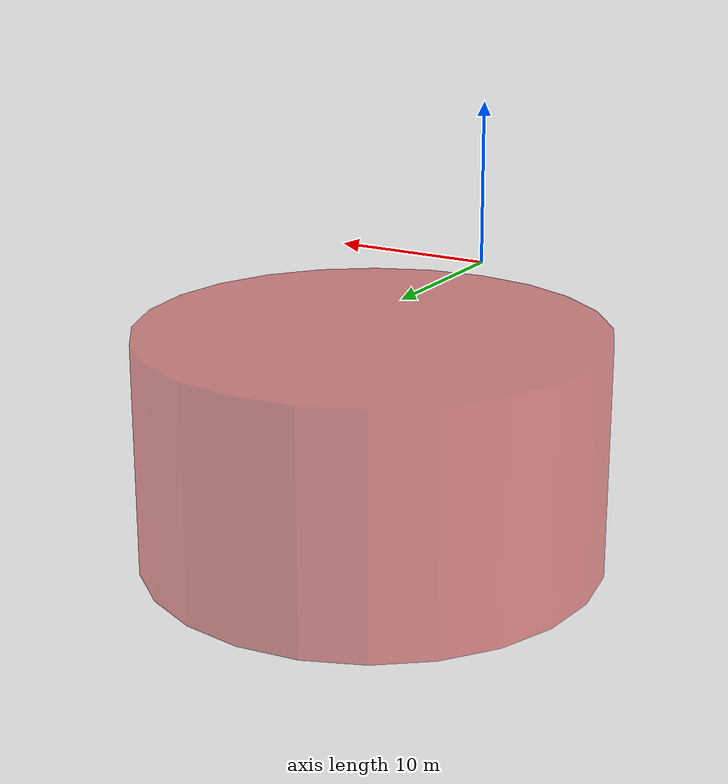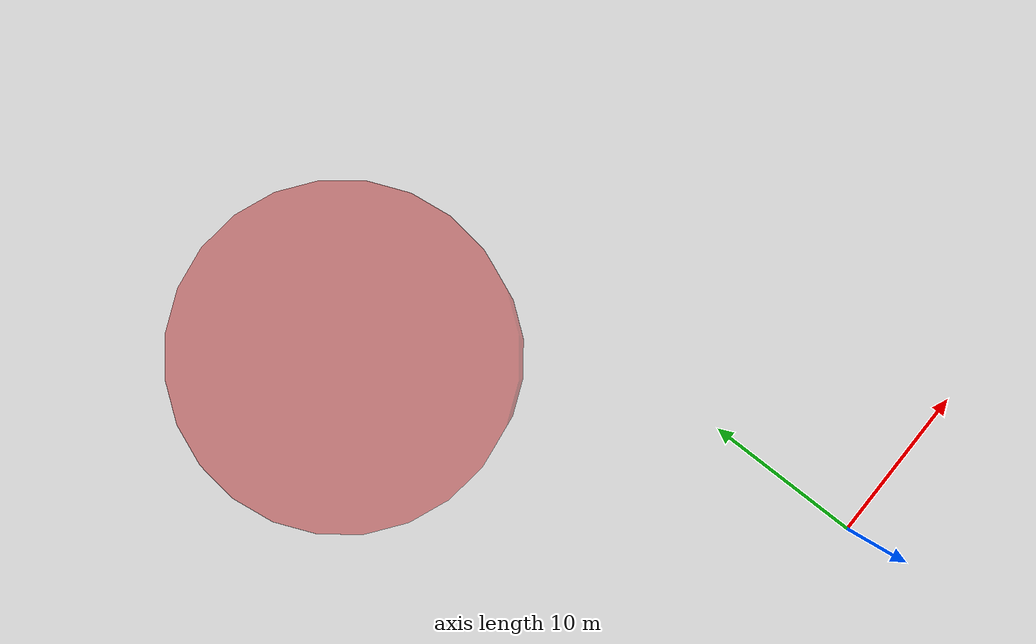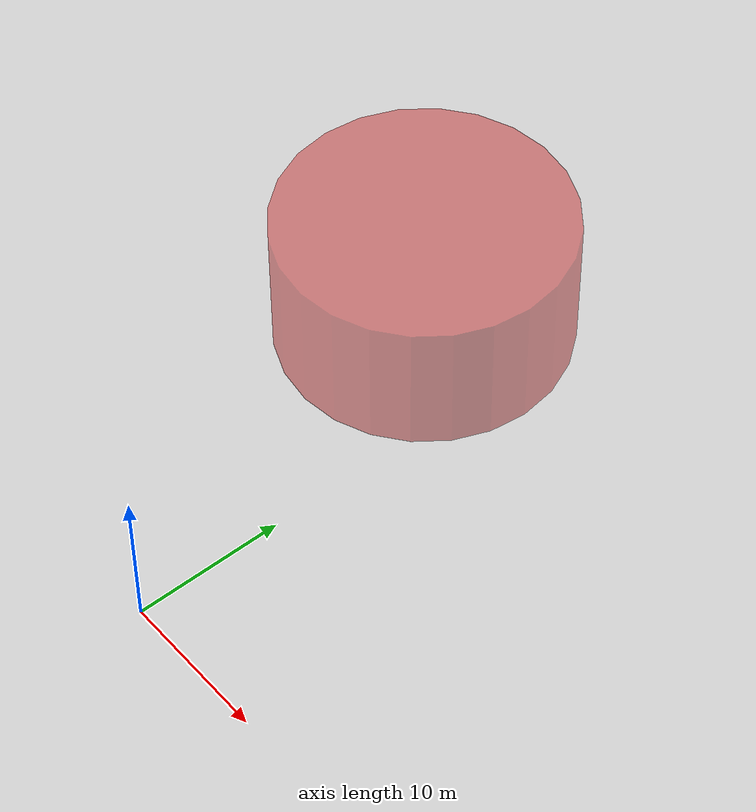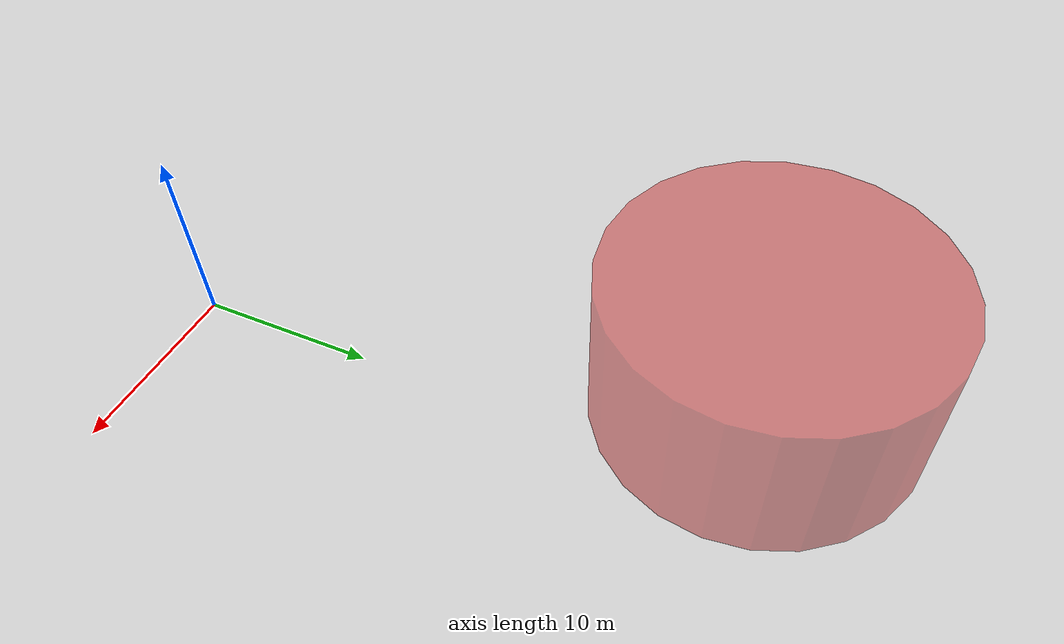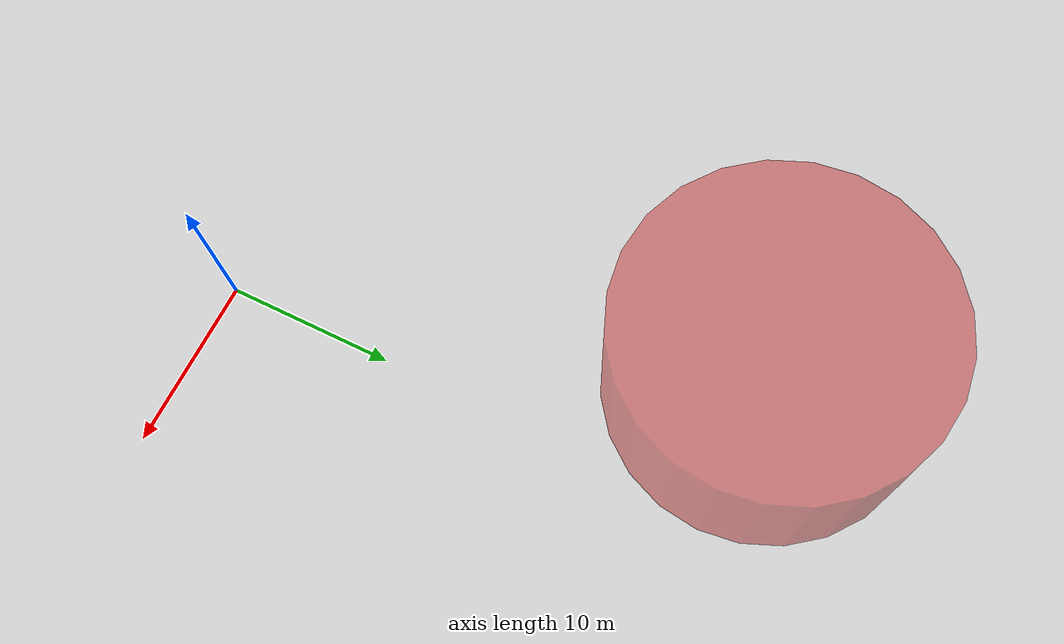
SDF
<sdf version="1.7">
 <world name="runway">
  <physics name="1ms" type="ignore">
   <max_step_size>0.001</max_step_size>
   <real_time_factor>1</real_time_factor>
  </physics>
  <plugin filename="gz-sim-physics-system" name="gz::sim::systems::Physics"/>
  <plugin filename="gz-sim-user-commands-system" name="gz::sim::systems::UserCommands"/>
  <plugin filename="gz-sim-scene-broadcaster-system" name="gz::sim::systems::SceneBroadcaster"/>
  <plugin filename="gz-sim-imu-system" name="gz::sim::systems::Imu"/>
  <plugin filename="gz-sim-navsat-system" name="gz::sim::systems::NavSat"/>
  <plugin filename="gz-sim-sensors-system" name="gz::sim::systems::Sensors">
   <render_engine>ogre2</render_engine>
  </plugin>
  <scene><ambient>1.0 1.0 1.0</ambient><background>0.8 0.8 0.8</background></scene>
  <spherical_coordinates>
   <latitude_deg>-35.363262</latitude_deg>
   <longitude_deg>149.165237</longitude_deg>
   <elevation>584</elevation>
   <heading_deg>0</heading_deg>
   <surface_model>EARTH_WGS84</surface_model>
  </spherical_coordinates>
  <light type="directional" name="sun">
   <pose>0 0 10 0 0 0</pose>
   <diffuse>0.8 0.8 0.8 1</diffuse>
   <specular>0.8 0.8 0.8 1</specular>
   <attenuation>
    <range>1000</range>
    <constant>0.9</constant>
    <linear>0.01</linear>
    <quadratic>0.001</quadratic>
   </attenuation>
   <direction>-0.5 0.1 -0.9</direction>
  </light>
  <model name="axes">
   <static>1</static>
   <link name="link">
    <visual name="r">
     <cast_shadows>0</cast_shadows>
     <pose>5 0 0.1 0 0 0</pose>
     <geometry><box><size>10 0.01 0.01</size></box></geometry>
     <material>
      <ambient>1 0 0 1</ambient>
      <diffuse>1 0 0 1</diffuse>
      <emissive>1 0 0 1</emissive>
      <specular>0.5 0.5 0.5 1</specular>
     </material>
    </visual>
    <visual name="g">
     <cast_shadows>0</cast_shadows>
     <pose>0 5 0.1 0 0 0</pose>
     <geometry><box><size>0.01 10 0.01</size></box></geometry>
     <material>
      <ambient>0 1 0 1</ambient>
      <diffuse>0 1 0 1</diffuse>
      <emissive>0 1 0 1</emissive>
      <specular>0.5 0.5 0.5 1</specular>
     </material>
    </visual>
    <visual name="b">
     <cast_shadows>0</cast_shadows>
     <pose>0 0 5.1 0 0 0</pose>
     <geometry><box><size>0.01 0.01 10</size></box></geometry>
     <material>
      <ambient>0 0 1 1</ambient>
      <diffuse>0 0 1 1</diffuse>
      <emissive>0 0 1 1</emissive>
      <specular>0.5 0.5 0.5 1</specular>
     </material>
    </visual>
   </link>
  </model>
  <model name="noflyzone">
   <static>true</static>
   <link name="link">
    <visual name="visual">
     <cast_shadows>false</cast_shadows>
     <geometry><cylinder><radius>10.0</radius><length>10.0</length></cylinder></geometry>
     <material>
      <script><uri>file://media/materials/scripts/gazebo.material</uri><name>Gazebo/RedTransparent</name></script>
      <ambient>1 0 0 0.5</ambient>
      <diffuse>1 0 0 0.5</diffuse>
     </material>
    </visual>
   </link>
   <pose>-10 30 0 0 0 0</pose>
  </model>
 </world>
</sdf>
